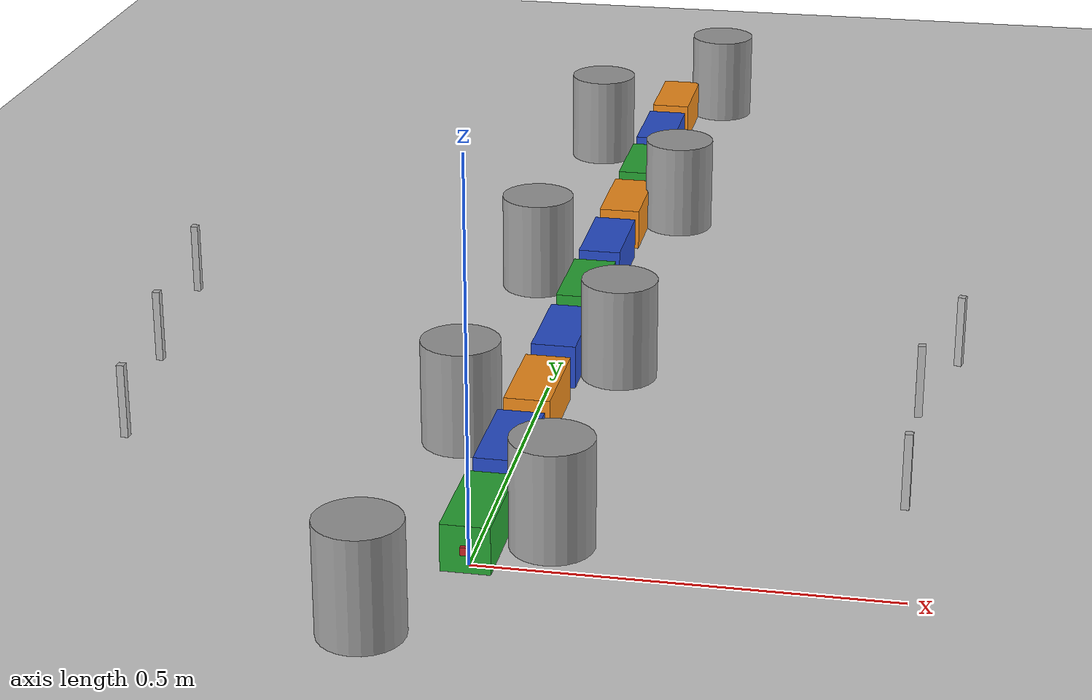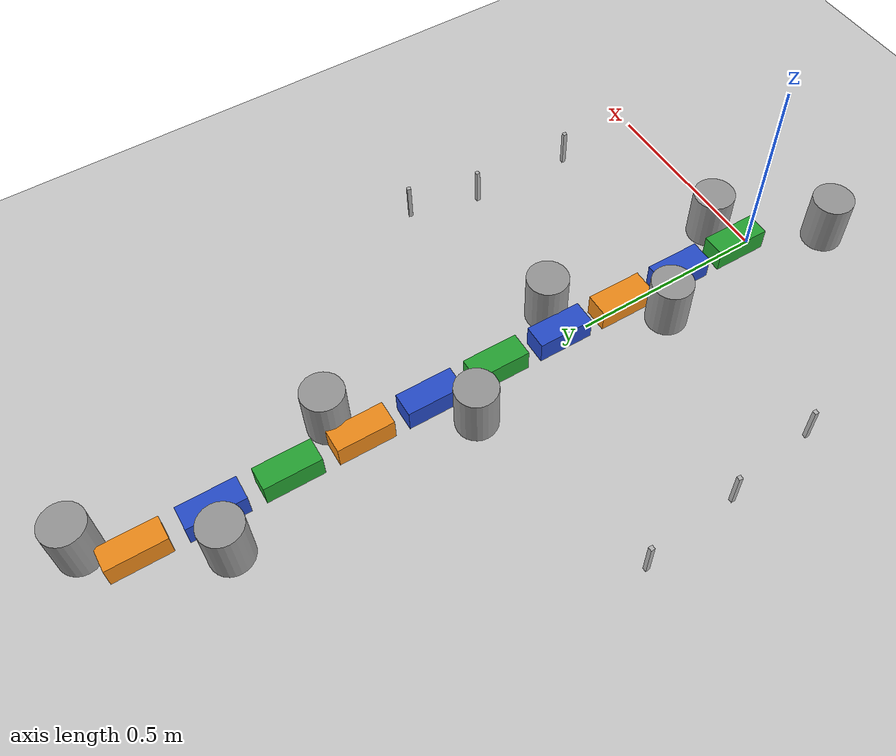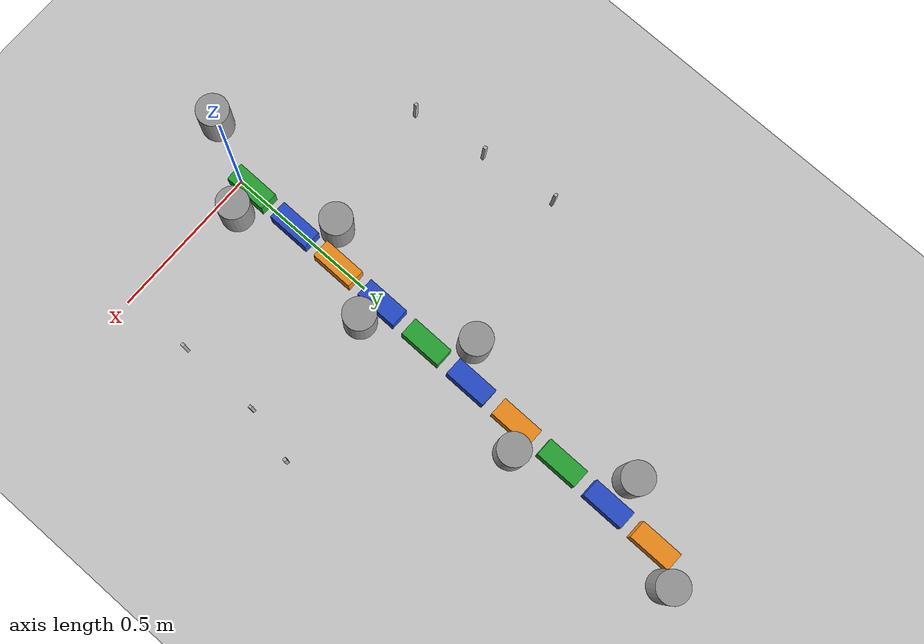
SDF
<sdf version="1.7">
 <world name="default">
  <light name="sun" type="directional">
   <pose>0 0 10 0 -0 0</pose>
   <diffuse>0.8 0.8 0.8 1</diffuse>
   <specular>0.2 0.2 0.2 1</specular>
   <attenuation>
    <range>1000</range>
    <constant>0.9</constant>
    <linear>0.01</linear>
    <quadratic>0.001</quadratic>
   </attenuation>
   <direction>-0.5 0.1 -0.9</direction>
   <spot><inner_angle>0</inner_angle><outer_angle>0</outer_angle><falloff>0</falloff></spot>
  </light>
  <model name="ground_plane">
   <static>1</static>
   <link name="link">
    <collision name="collision">
     <geometry><plane><normal>0 0 1</normal><size>100 100</size></plane></geometry>
     <surface>
      <contact><collide_bitmask>65535</collide_bitmask></contact>
      <friction><ode><mu>100</mu><mu2>50</mu2></ode></friction>
     </surface>
    </collision>
    <visual name="visual">
     <cast_shadows>0</cast_shadows>
     <geometry><plane><normal>0 0 1</normal><size>100 100</size></plane></geometry>
     <material>
      <script><uri>file://media/materials/scripts/gazebo.material</uri><name>Gazebo/Grey</name></script>
     </material>
    </visual>
   </link>
  </model>
  <gravity>0 0 -9.8</gravity>
  <magnetic_field>6e-06 2.3e-05 -4.2e-05</magnetic_field>
  <atmosphere type="adiabatic"/>
  <physics type="ode">
   <max_step_size>0.001</max_step_size>
   <real_time_factor>1</real_time_factor>
   <real_time_update_rate>1000</real_time_update_rate>
  </physics>
  <scene><ambient>0.4 0.4 0.4 1</ambient><background>0.7 0.7 0.7 1</background><shadows>1</shadows></scene>
  <audio><device>default</device></audio>
  <spherical_coordinates>
   <surface_model>EARTH_WGS84</surface_model>
   <latitude_deg>0</latitude_deg>
   <longitude_deg>0</longitude_deg>
   <elevation>0</elevation>
   <heading_deg>0</heading_deg>
  </spherical_coordinates>
  <model name="obstacle_1">
   <link name="base">
    <inertial>
     <mass>500</mass>
     <inertia>
      <ixx>0.0386667</ixx>
      <ixy>2.77556e-17</ixy>
      <ixz>0</ixz>
      <iyy>0.012</iyy>
      <iyz>0</iyz>
      <izz>0.0386667</izz>
     </inertia>
    </inertial>
    <collision name="base_fixed_joint_lump__obs_1_collision">
     <geometry><box><size>0.01 0.01 0.1</size></box></geometry>
    </collision>
    <visual name="base_fixed_joint_lump__obs_1_visual">
     <geometry><box><size>0.01 0.01 0.1</size></box></geometry>
    </visual>
   </link>
   <pose>0.485477 0.23275 0.05 -1e-06 3e-06 -0.059636</pose>
  </model>
  <model name="obstacle_2">
   <link name="base">
    <inertial>
     <mass>500</mass>
     <inertia>
      <ixx>0.0386667</ixx>
      <ixy>2.77556e-17</ixy>
      <ixz>0</ixz>
      <iyy>0.012</iyy>
      <iyz>0</iyz>
      <izz>0.0386667</izz>
     </inertia>
    </inertial>
    <collision name="base_fixed_joint_lump__obs_1_collision">
     <geometry><box><size>0.01 0.01 0.1</size></box></geometry>
    </collision>
    <visual name="base_fixed_joint_lump__obs_1_visual">
     <geometry><box><size>0.01 0.01 0.1</size></box></geometry>
    </visual>
   </link>
   <pose>-0.505278 0.256568 0.05 -4e-06 1.8e-05 -0.058457</pose>
  </model>
  <model name="obstacle_3">
   <link name="base">
    <inertial>
     <mass>500</mass>
     <inertia>
      <ixx>0.0386667</ixx>
      <ixy>2.77556e-17</ixy>
      <ixz>0</ixz>
      <iyy>0.012</iyy>
      <iyz>0</iyz>
      <izz>0.0386667</izz>
     </inertia>
    </inertial>
    <collision name="base_fixed_joint_lump__obs_1_collision">
     <geometry><box><size>0.01 0.01 0.1</size></box></geometry>
    </collision>
    <visual name="base_fixed_joint_lump__obs_1_visual">
     <geometry><box><size>0.01 0.01 0.1</size></box></geometry>
    </visual>
   </link>
   <pose>0.48854 0.49998 0.05 4e-06 1.8e-05 0.027303</pose>
  </model>
  <model name="obstacle_4">
   <link name="base">
    <inertial>
     <mass>500</mass>
     <inertia>
      <ixx>0.0386667</ixx>
      <ixy>2.77556e-17</ixy>
      <ixz>0</ixz>
      <iyy>0.012</iyy>
      <iyz>0</iyz>
      <izz>0.0386667</izz>
     </inertia>
    </inertial>
    <collision name="base_fixed_joint_lump__obs_1_collision">
     <geometry><box><size>0.01 0.01 0.1</size></box></geometry>
    </collision>
    <visual name="base_fixed_joint_lump__obs_1_visual">
     <geometry><box><size>0.01 0.01 0.1</size></box></geometry>
    </visual>
   </link>
   <pose>-0.540859 0.498357 0.05 4e-06 -1.8e-05 -0.03803</pose>
  </model>
  <model name="obstacle_5">
   <link name="base">
    <inertial>
     <mass>500</mass>
     <inertia>
      <ixx>0.0386667</ixx>
      <ixy>2.77556e-17</ixy>
      <ixz>0</ixz>
      <iyy>0.012</iyy>
      <iyz>0</iyz>
      <izz>0.0386667</izz>
     </inertia>
    </inertial>
    <collision name="base_fixed_joint_lump__obs_1_collision">
     <geometry><box><size>0.01 0.01 0.1</size></box></geometry>
    </collision>
    <visual name="base_fixed_joint_lump__obs_1_visual">
     <geometry><box><size>0.01 0.01 0.1</size></box></geometry>
    </visual>
   </link>
   <pose>0.5347 0.675072 0.05 9e-06 2e-06 -0.26223</pose>
  </model>
  <model name="obstacle_6">
   <link name="base">
    <inertial>
     <mass>500</mass>
     <inertia>
      <ixx>0.0386667</ixx>
      <ixy>2.77556e-17</ixy>
      <ixz>0</ixz>
      <iyy>0.012</iyy>
      <iyz>0</iyz>
      <izz>0.0386667</izz>
     </inertia>
    </inertial>
    <collision name="base_fixed_joint_lump__obs_1_collision">
     <geometry><box><size>0.01 0.01 0.1</size></box></geometry>
    </collision>
    <visual name="base_fixed_joint_lump__obs_1_visual">
     <geometry><box><size>0.01 0.01 0.1</size></box></geometry>
    </visual>
   </link>
   <pose>-0.568573 0.748749 0.05 -5e-06 -2.1e-05 4.1e-05</pose>
  </model>
  <model name="my_bot">
   <link name="base_link">
    <inertial>
     <pose>0 0.07 0.03 0 -0 0</pose>
     <mass>1</mass>
     <inertia>
      <ixx>0.00193333</ixx>
      <ixy>0</ixy>
      <ixz>0</ixz>
      <iyy>0.0006</iyy>
      <iyz>0</iyz>
      <izz>0.00193333</izz>
     </inertia>
    </inertial>
    <collision name="base_link_fixed_joint_lump__link_1_collision">
     <pose>0 0.07 0.03 0 -0 0</pose>
     <geometry><box><size>0.06 0.14 0.06</size></box></geometry>
    </collision>
    <visual name="base_link_fixed_joint_lump__link_1_visual">
     <pose>0 0.07 0.03 0 -0 0</pose>
     <geometry><box><size>0.06 0.14 0.06</size></box></geometry>
     <material>
      <script><name>Gazebo/Green</name><uri>file://media/materials/scripts/gazebo.material</uri></script>
     </material>
    </visual>
    <visual name="base_link_fixed_joint_lump__camera_link_visual_1">
     <pose>0 0 0.03 0 0 -1.5708</pose>
     <geometry><box><size>0.01 0.01 0.01</size></box></geometry>
     <material>
      <script><name>Gazebo/Red</name><uri>file://media/materials/scripts/gazebo.material</uri></script>
     </material>
    </visual>
    <sensor name="camera" type="camera">
     <visualize>1</visualize>
     <update_rate>10</update_rate>
     <camera>
      <horizontal_fov>1.089</horizontal_fov>
      <image><format>R8G8B8</format><width>640</width><height>480</height></image>
      <clip><near>0.05</near><far>8</far></clip>
     </camera>
     <plugin name="camera_controller" filename="libgazebo_ros_camera.so">
      <frame_name>camera_link_optical</frame_name>
     </plugin>
     <pose>0 0 0.03 0 0 -1.5708</pose>
    </sensor>
   </link>
   <joint name="link_1_2_joint" type="revolute">
    <pose relative_to="base_link">0 0.175 0 0 -0 0</pose>
    <parent>base_link</parent>
    <child>link_2</child>
    <axis>
     <xyz>0 0 1</xyz>
     <limit><lower>-0.785398</lower><upper>0.785398</upper><effort>1000</effort><velocity>50</velocity></limit>
     <dynamics><spring_reference>0</spring_reference><spring_stiffness>0</spring_stiffness></dynamics>
    </axis>
   </joint>
   <link name="link_2">
    <pose relative_to="link_1_2_joint">0 0 0 0 -0 0</pose>
    <inertial>
     <pose>0 0.07 0.03 0 -0 0</pose>
     <mass>1</mass>
     <inertia>
      <ixx>0.00193333</ixx>
      <ixy>0</ixy>
      <ixz>0</ixz>
      <iyy>0.0006</iyy>
      <iyz>0</iyz>
      <izz>0.00193333</izz>
     </inertia>
    </inertial>
    <collision name="link_2_collision">
     <pose>0 0.07 0.03 0 -0 0</pose>
     <geometry><box><size>0.06 0.14 0.06</size></box></geometry>
    </collision>
    <visual name="link_2_visual">
     <pose>0 0.07 0.03 0 -0 0</pose>
     <geometry><box><size>0.06 0.14 0.06</size></box></geometry>
     <material>
      <script><name>Gazebo/Blue</name><uri>file://media/materials/scripts/gazebo.material</uri></script>
     </material>
    </visual>
   </link>
   <joint name="link_2_3_joint" type="revolute">
    <pose relative_to="link_2">0 0.175 0 0 -0 0</pose>
    <parent>link_2</parent>
    <child>link_3</child>
    <axis>
     <xyz>0 0 1</xyz>
     <limit><lower>-0.785398</lower><upper>0.785398</upper><effort>1000</effort><velocity>50</velocity></limit>
     <dynamics><spring_reference>0</spring_reference><spring_stiffness>0</spring_stiffness></dynamics>
    </axis>
   </joint>
   <link name="link_3">
    <pose relative_to="link_2_3_joint">0 0 0 0 -0 0</pose>
    <inertial>
     <pose>0 0.07 0.03 0 -0 0</pose>
     <mass>1</mass>
     <inertia>
      <ixx>0.00193333</ixx>
      <ixy>0</ixy>
      <ixz>0</ixz>
      <iyy>0.0006</iyy>
      <iyz>0</iyz>
      <izz>0.00193333</izz>
     </inertia>
    </inertial>
    <collision name="link_3_collision">
     <pose>0 0.07 0.03 0 -0 0</pose>
     <geometry><box><size>0.06 0.14 0.06</size></box></geometry>
    </collision>
    <visual name="link_3_visual">
     <pose>0 0.07 0.03 0 -0 0</pose>
     <geometry><box><size>0.06 0.14 0.06</size></box></geometry>
     <material>
      <script><name>Gazebo/Orange</name><uri>file://media/materials/scripts/gazebo.material</uri></script>
     </material>
    </visual>
   </link>
   <joint name="link_3_4_joint" type="revolute">
    <pose relative_to="link_3">0 0.175 0 0 -0 0</pose>
    <parent>link_3</parent>
    <child>link_4</child>
    <axis>
     <xyz>0 0 1</xyz>
     <limit><lower>-0.785398</lower><upper>0.785398</upper><effort>1000</effort><velocity>50</velocity></limit>
     <dynamics><spring_reference>0</spring_reference><spring_stiffness>0</spring_stiffness></dynamics>
    </axis>
   </joint>
   <link name="link_4">
    <pose relative_to="link_3_4_joint">0 0 0 0 -0 0</pose>
    <inertial>
     <pose>0 0.07 0.03 0 -0 0</pose>
     <mass>1</mass>
     <inertia>
      <ixx>0.00193333</ixx>
      <ixy>0</ixy>
      <ixz>0</ixz>
      <iyy>0.0006</iyy>
      <iyz>0</iyz>
      <izz>0.00193333</izz>
     </inertia>
    </inertial>
    <collision name="link_4_collision">
     <pose>0 0.07 0.03 0 -0 0</pose>
     <geometry><box><size>0.06 0.14 0.06</size></box></geometry>
    </collision>
    <visual name="link_4_visual">
     <pose>0 0.07 0.03 0 -0 0</pose>
     <geometry><box><size>0.06 0.14 0.06</size></box></geometry>
     <material>
      <script><name>Gazebo/Blue</name><uri>file://media/materials/scripts/gazebo.material</uri></script>
     </material>
    </visual>
   </link>
   <joint name="link_4_5_joint" type="revolute">
    <pose relative_to="link_4">0 0.175 0 0 -0 0</pose>
    <parent>link_4</parent>
    <child>link_5</child>
    <axis>
     <xyz>0 0 1</xyz>
     <limit><lower>-0.785398</lower><upper>0.785398</upper><effort>1000</effort><velocity>50</velocity></limit>
     <dynamics><spring_reference>0</spring_reference><spring_stiffness>0</spring_stiffness></dynamics>
    </axis>
   </joint>
   <link name="link_5">
    <pose relative_to="link_4_5_joint">0 0 0 0 -0 0</pose>
    <inertial>
     <pose>0 0.07 0.03 0 -0 0</pose>
     <mass>1</mass>
     <inertia>
      <ixx>0.00193333</ixx>
      <ixy>0</ixy>
      <ixz>0</ixz>
      <iyy>0.0006</iyy>
      <iyz>0</iyz>
      <izz>0.00193333</izz>
     </inertia>
    </inertial>
    <collision name="link_5_collision">
     <pose>0 0.07 0.03 0 -0 0</pose>
     <geometry><box><size>0.06 0.14 0.06</size></box></geometry>
    </collision>
    <visual name="link_5_visual">
     <pose>0 0.07 0.03 0 -0 0</pose>
     <geometry><box><size>0.06 0.14 0.06</size></box></geometry>
     <material>
      <script><name>Gazebo/Green</name><uri>file://media/materials/scripts/gazebo.material</uri></script>
     </material>
    </visual>
   </link>
   <joint name="link_5_6_joint" type="revolute">
    <pose relative_to="link_5">0 0.175 0 0 -0 0</pose>
    <parent>link_5</parent>
    <child>link_6</child>
    <axis>
     <xyz>0 0 1</xyz>
     <limit><lower>-0.785398</lower><upper>0.785398</upper><effort>1000</effort><velocity>50</velocity></limit>
     <dynamics><spring_reference>0</spring_reference><spring_stiffness>0</spring_stiffness></dynamics>
    </axis>
   </joint>
   <link name="link_6">
    <pose relative_to="link_5_6_joint">0 0 0 0 -0 0</pose>
    <inertial>
     <pose>0 0.07 0.03 0 -0 0</pose>
     <mass>1</mass>
     <inertia>
      <ixx>0.00193333</ixx>
      <ixy>0</ixy>
      <ixz>0</ixz>
      <iyy>0.0006</iyy>
      <iyz>0</iyz>
      <izz>0.00193333</izz>
     </inertia>
    </inertial>
    <collision name="link_6_collision">
     <pose>0 0.07 0.03 0 -0 0</pose>
     <geometry><box><size>0.06 0.14 0.06</size></box></geometry>
    </collision>
    <visual name="link_6_visual">
     <pose>0 0.07 0.03 0 -0 0</pose>
     <geometry><box><size>0.06 0.14 0.06</size></box></geometry>
     <material>
      <script><name>Gazebo/Blue</name><uri>file://media/materials/scripts/gazebo.material</uri></script>
     </material>
    </visual>
   </link>
   <joint name="link_6_7_joint" type="revolute">
    <pose relative_to="link_6">0 0.175 0 0 -0 0</pose>
    <parent>link_6</parent>
    <child>link_7</child>
    <axis>
     <xyz>0 0 1</xyz>
     <limit><lower>-0.785398</lower><upper>0.785398</upper><effort>1000</effort><velocity>50</velocity></limit>
     <dynamics><spring_reference>0</spring_reference><spring_stiffness>0</spring_stiffness></dynamics>
    </axis>
   </joint>
   <link name="link_7">
    <pose relative_to="link_6_7_joint">0 0 0 0 -0 0</pose>
    <inertial>
     <pose>0 0.07 0.03 0 -0 0</pose>
     <mass>1</mass>
     <inertia>
      <ixx>0.00193333</ixx>
      <ixy>0</ixy>
      <ixz>0</ixz>
      <iyy>0.0006</iyy>
      <iyz>0</iyz>
      <izz>0.00193333</izz>
     </inertia>
    </inertial>
    <collision name="link_7_collision">
     <pose>0 0.07 0.03 0 -0 0</pose>
     <geometry><box><size>0.06 0.14 0.06</size></box></geometry>
    </collision>
    <visual name="link_7_visual">
     <pose>0 0.07 0.03 0 -0 0</pose>
     <geometry><box><size>0.06 0.14 0.06</size></box></geometry>
     <material>
      <script><name>Gazebo/Orange</name><uri>file://media/materials/scripts/gazebo.material</uri></script>
     </material>
    </visual>
   </link>
   <joint name="link_7_8_joint" type="revolute">
    <pose relative_to="link_7">0 0.175 0 0 -0 0</pose>
    <parent>link_7</parent>
    <child>link_8</child>
    <axis>
     <xyz>0 0 1</xyz>
     <limit><lower>-0.785398</lower><upper>0.785398</upper><effort>1000</effort><velocity>50</velocity></limit>
     <dynamics><spring_reference>0</spring_reference><spring_stiffness>0</spring_stiffness></dynamics>
    </axis>
   </joint>
   <link name="link_8">
    <pose relative_to="link_7_8_joint">0 0 0 0 -0 0</pose>
    <inertial>
     <pose>0 0.07 0.03 0 -0 0</pose>
     <mass>1</mass>
     <inertia>
      <ixx>0.00193333</ixx>
      <ixy>0</ixy>
      <ixz>0</ixz>
      <iyy>0.0006</iyy>
      <iyz>0</iyz>
      <izz>0.00193333</izz>
     </inertia>
    </inertial>
    <collision name="link_8_collision">
     <pose>0 0.07 0.03 0 -0 0</pose>
     <geometry><box><size>0.06 0.14 0.06</size></box></geometry>
    </collision>
    <visual name="link_8_visual">
     <pose>0 0.07 0.03 0 -0 0</pose>
     <geometry><box><size>0.06 0.14 0.06</size></box></geometry>
     <material>
      <script><name>Gazebo/Green</name><uri>file://media/materials/scripts/gazebo.material</uri></script>
     </material>
    </visual>
   </link>
   <joint name="link_8_9_joint" type="revolute">
    <pose relative_to="link_8">0 0.175 0 0 -0 0</pose>
    <parent>link_8</parent>
    <child>link_9</child>
    <axis>
     <xyz>0 0 1</xyz>
     <limit><lower>-0.785398</lower><upper>0.785398</upper><effort>1000</effort><velocity>50</velocity></limit>
     <dynamics><spring_reference>0</spring_reference><spring_stiffness>0</spring_stiffness></dynamics>
    </axis>
   </joint>
   <link name="link_9">
    <pose relative_to="link_8_9_joint">0 0 0 0 -0 0</pose>
    <inertial>
     <pose>0 0.07 0.03 0 -0 0</pose>
     <mass>1</mass>
     <inertia>
      <ixx>0.00193333</ixx>
      <ixy>0</ixy>
      <ixz>0</ixz>
      <iyy>0.0006</iyy>
      <iyz>0</iyz>
      <izz>0.00193333</izz>
     </inertia>
    </inertial>
    <collision name="link_9_collision">
     <pose>0 0.07 0.03 0 -0 0</pose>
     <geometry><box><size>0.06 0.14 0.06</size></box></geometry>
    </collision>
    <visual name="link_9_visual">
     <pose>0 0.07 0.03 0 -0 0</pose>
     <geometry><box><size>0.06 0.14 0.06</size></box></geometry>
     <material>
      <script><name>Gazebo/Blue</name><uri>file://media/materials/scripts/gazebo.material</uri></script>
     </material>
    </visual>
   </link>
   <joint name="link_9_10_joint" type="revolute">
    <pose relative_to="link_9">0 0.175 0 0 -0 0</pose>
    <parent>link_9</parent>
    <child>link_10</child>
    <axis>
     <xyz>0 0 1</xyz>
     <limit><lower>-0.785398</lower><upper>0.785398</upper><effort>1000</effort><velocity>50</velocity></limit>
     <dynamics><spring_reference>0</spring_reference><spring_stiffness>0</spring_stiffness></dynamics>
    </axis>
   </joint>
   <link name="link_10">
    <pose relative_to="link_9_10_joint">0 0 0 0 -0 0</pose>
    <inertial>
     <pose>0 0.07 0.03 0 -0 0</pose>
     <mass>1</mass>
     <inertia>
      <ixx>0.00193333</ixx>
      <ixy>0</ixy>
      <ixz>0</ixz>
      <iyy>0.0006</iyy>
      <iyz>0</iyz>
      <izz>0.00193333</izz>
     </inertia>
    </inertial>
    <collision name="link_10_collision">
     <pose>0 0.07 0.03 0 -0 0</pose>
     <geometry><box><size>0.06 0.14 0.06</size></box></geometry>
    </collision>
    <visual name="link_10_visual">
     <pose>0 0.07 0.03 0 -0 0</pose>
     <geometry><box><size>0.06 0.14 0.06</size></box></geometry>
     <material>
      <script><name>Gazebo/Orange</name><uri>file://media/materials/scripts/gazebo.material</uri></script>
     </material>
    </visual>
   </link>
   <static>0</static>
   <plugin name="gazebo_ros_planar_move" filename="libgazebo_ros_planar_move.so">
    <update_rate>100</update_rate>
    <publish_rate>10</publish_rate>
    <publish_odom>1</publish_odom>
    <publish_odom_tf>1</publish_odom_tf>
    <odometry_frame>odom</odometry_frame>
    <robot_base_frame>base_link</robot_base_frame>
   </plugin>
   <plugin name="gazebo_ros2_control" filename="libgazebo_ros2_control.so">
    <parameters>/home/mohit/GITHUBRepos/snake-robot-sim/install/snake_bot/share/snake_bot/config/controllers.yaml</parameters>
   </plugin>
   <plugin name="ft_sensor" filename="libgazebo_ros_ft_sensor.so">
    <updateRate>100.0</updateRate>
    <remapping>wrench:=joint_1</remapping>
    <joint_name>link_1_2_joint</joint_name>
    <gaussian_noise>0.01</gaussian_noise>
    <update_rate>1</update_rate>
   </plugin>
   <pose>-0.000726 -0.020811 -2e-06 6e-06 -0 -0.010374</pose>
  </model>
  <model name="unit_cylinder">
   <pose>0.08485 0.063589 0.069857 0 -0 1.7e-05</pose>
   <link name="link">
    <inertial>
     <mass>1</mass>
     <inertia><ixx>0.145833</ixx><ixy>0</ixy><ixz>0</ixz><iyy>0.145833</iyy><iyz>0</iyz><izz>0.125</izz></inertia>
    </inertial>
    <collision name="collision">
     <geometry><cylinder><radius>0.0512891</radius><length>0.139727</length></cylinder></geometry>
    </collision>
    <visual name="visual">
     <geometry><cylinder><radius>0.0512891</radius><length>0.139727</length></cylinder></geometry>
     <material>
      <script><name>Gazebo/Grey</name><uri>file://media/materials/scripts/gazebo.material</uri></script>
     </material>
    </visual>
   </link>
  </model>
  <model name="unit_cylinder_clone">
   <pose>-0.079603 0.320485 0.069854 0 -0 4.8e-05</pose>
   <link name="link">
    <inertial>
     <mass>1</mass>
     <inertia><ixx>0.145833</ixx><ixy>0</ixy><ixz>0</ixz><iyy>0.145833</iyy><iyz>0</iyz><izz>0.125</izz></inertia>
    </inertial>
    <collision name="collision">
     <geometry><cylinder><radius>0.0512893</radius><length>0.139727</length></cylinder></geometry>
    </collision>
    <visual name="visual">
     <geometry><cylinder><radius>0.0512893</radius><length>0.139727</length></cylinder></geometry>
     <material>
      <script><name>Gazebo/Grey</name><uri>file://media/materials/scripts/gazebo.material</uri></script>
     </material>
    </visual>
   </link>
  </model>
  <model name="unit_cylinder_clone_clone">
   <pose>0.084982 0.558164 0.069854 0 -0 0.000145</pose>
   <link name="link">
    <inertial>
     <mass>1</mass>
     <inertia><ixx>0.145833</ixx><ixy>0</ixy><ixz>0</ixz><iyy>0.145833</iyy><iyz>0</iyz><izz>0.125</izz></inertia>
    </inertial>
    <collision name="collision">
     <geometry><cylinder><radius>0.0512893</radius><length>0.139727</length></cylinder></geometry>
    </collision>
    <visual name="visual">
     <geometry><cylinder><radius>0.0512893</radius><length>0.139727</length></cylinder></geometry>
     <material>
      <script><name>Gazebo/Grey</name><uri>file://media/materials/scripts/gazebo.material</uri></script>
     </material>
    </visual>
   </link>
  </model>
  <model name="unit_cylinder_clone_clone_clone">
   <pose>-0.082818 0.857604 0.069854 0 -0 0.000144</pose>
   <link name="link">
    <inertial>
     <mass>1</mass>
     <inertia><ixx>0.145833</ixx><ixy>0</ixy><ixz>0</ixz><iyy>0.145833</iyy><iyz>0</iyz><izz>0.125</izz></inertia>
    </inertial>
    <collision name="collision">
     <geometry><cylinder><radius>0.0512893</radius><length>0.139727</length></cylinder></geometry>
    </collision>
    <visual name="visual">
     <geometry><cylinder><radius>0.0512893</radius><length>0.139727</length></cylinder></geometry>
     <material>
      <script><name>Gazebo/Grey</name><uri>file://media/materials/scripts/gazebo.material</uri></script>
     </material>
    </visual>
   </link>
  </model>
  <model name="unit_cylinder_clone_clone_clone_clone">
   <pose>0.085755 1.14376 0.069854 0 -0 0.000144</pose>
   <link name="link">
    <inertial>
     <mass>1</mass>
     <inertia><ixx>0.145833</ixx><ixy>0</ixy><ixz>0</ixz><iyy>0.145833</iyy><iyz>0</iyz><izz>0.125</izz></inertia>
    </inertial>
    <collision name="collision">
     <geometry><cylinder><radius>0.0512893</radius><length>0.139727</length></cylinder></geometry>
    </collision>
    <visual name="visual">
     <geometry><cylinder><radius>0.0512893</radius><length>0.139727</length></cylinder></geometry>
     <material>
      <script><name>Gazebo/Grey</name><uri>file://media/materials/scripts/gazebo.material</uri></script>
     </material>
    </visual>
   </link>
  </model>
  <model name="unit_cylinder_clone_clone_clone_clone_clone">
   <pose>-0.084513 1.45643 0.069859 -1e-06 1e-06 0.000147</pose>
   <link name="link">
    <inertial>
     <mass>1</mass>
     <inertia><ixx>0.145833</ixx><ixy>0</ixy><ixz>0</ixz><iyy>0.145833</iyy><iyz>0</iyz><izz>0.125</izz></inertia>
    </inertial>
    <collision name="collision">
     <geometry><cylinder><radius>0.0512893</radius><length>0.139727</length></cylinder></geometry>
    </collision>
    <visual name="visual">
     <geometry><cylinder><radius>0.0512893</radius><length>0.139727</length></cylinder></geometry>
     <material>
      <script><name>Gazebo/Grey</name><uri>file://media/materials/scripts/gazebo.material</uri></script>
     </material>
    </visual>
   </link>
  </model>
  <model name="unit_cylinder_clone_clone_clone_clone_clone_clone">
   <pose>0.083557 1.72166 0.069854 -2e-06 -1e-06 0.000148</pose>
   <link name="link">
    <inertial>
     <mass>1</mass>
     <inertia><ixx>0.145833</ixx><ixy>0</ixy><ixz>0</ixz><iyy>0.145833</iyy><iyz>0</iyz><izz>0.125</izz></inertia>
    </inertial>
    <collision name="collision">
     <geometry><cylinder><radius>0.0512893</radius><length>0.139727</length></cylinder></geometry>
    </collision>
    <visual name="visual">
     <geometry><cylinder><radius>0.0512893</radius><length>0.139727</length></cylinder></geometry>
     <material>
      <script><name>Gazebo/Grey</name><uri>file://media/materials/scripts/gazebo.material</uri></script>
     </material>
    </visual>
   </link>
  </model>
  <model name="unit_cylinder_clone_0">
   <pose>-0.083684 -0.172888 0.069857 0 -0 1.7e-05</pose>
   <link name="link">
    <inertial>
     <mass>1</mass>
     <inertia><ixx>0.145833</ixx><ixy>0</ixy><ixz>0</ixz><iyy>0.145833</iyy><iyz>0</iyz><izz>0.125</izz></inertia>
    </inertial>
    <collision name="collision">
     <geometry><cylinder><radius>0.0512893</radius><length>0.139727</length></cylinder></geometry>
    </collision>
    <visual name="visual">
     <geometry><cylinder><radius>0.0512893</radius><length>0.139727</length></cylinder></geometry>
     <material>
      <script><name>Gazebo/Grey</name><uri>file://media/materials/scripts/gazebo.material</uri></script>
     </material>
    </visual>
   </link>
  </model>
 </world>
</sdf>
